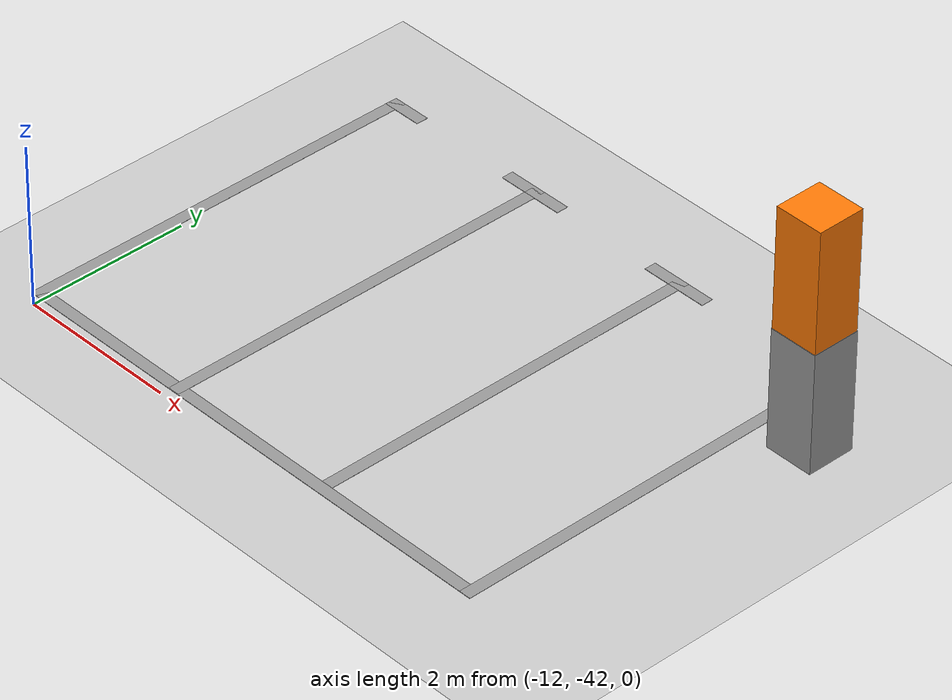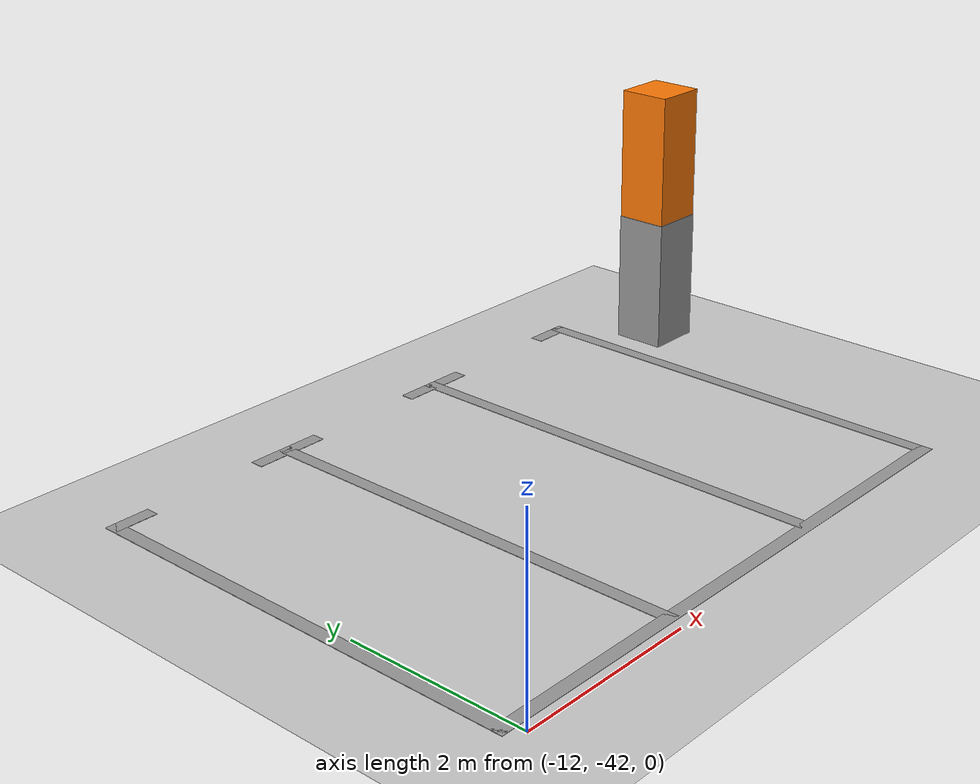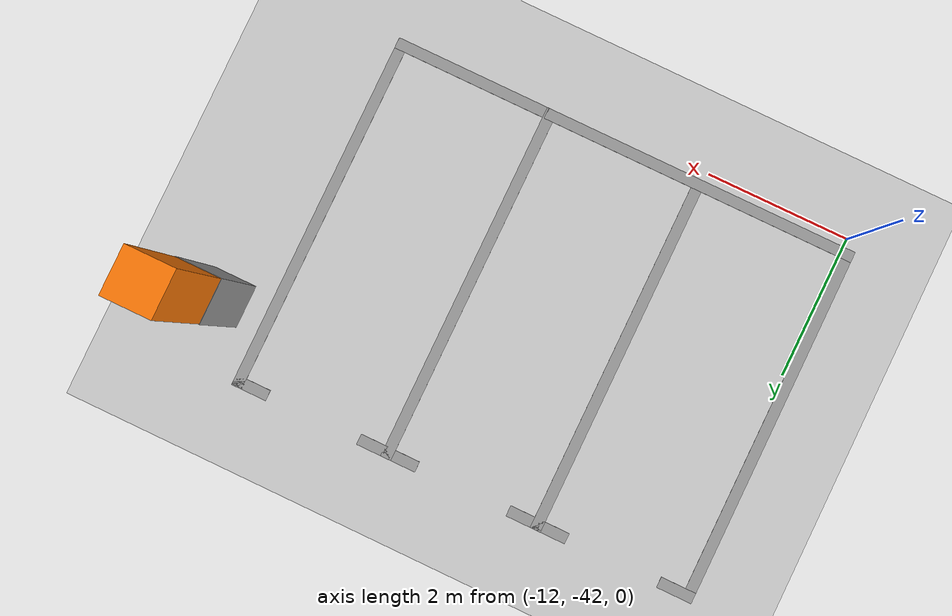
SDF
<sdf version="1.7">
 <world name="default">
  <model name="ground_plane">
   <static>1</static>
   <link name="link">
    <collision name="collision">
     <geometry><plane><normal>0 0 1</normal><size>100 100</size></plane></geometry>
     <surface><friction><ode><mu>100</mu><mu2>50</mu2></ode></friction></surface>
    </collision>
    <visual name="visual">
     <cast_shadows>0</cast_shadows>
     <geometry><plane><normal>0 0 1</normal><size>100 100</size></plane></geometry>
     <material>
      <script><uri>file://media/materials/scripts/gazebo.material</uri><name>Gazebo/Grey</name></script>
     </material>
    </visual>
   </link>
  </model>
  <model name="carport1_4_clone_3_clone_clone_3">
   <pose>-8.40181 -41.0747 0 0 -0 3.14141</pose>
   <link name="Wall_105">
    <collision name="Wall_105_Collision">
     <geometry><box><size>0.61 0.6 1.5</size></box></geometry>
     <pose>0 0 0.75 0 -0 0</pose>
    </collision>
    <visual name="Wall_105_Visual">
     <pose>0 0 0.75 0 -0 0</pose>
     <geometry><box><size>0.61 0.6 1.5</size></box></geometry>
     <material>
      <script><uri>file://media/materials/scripts/gazebo.material</uri><name>Gazebo/Grey</name></script>
      <ambient>1 1 1 1</ambient>
     </material>
     <meta><layer>0</layer></meta>
    </visual>
    <pose>-3.47407 -3.2865 0 0 -0 0</pose>
   </link>
   <link name="Wall_116">
    <collision name="Wall_116_Collision">
     <geometry><box><size>5.1 0.15 0.005</size></box></geometry>
     <pose>0 0 0.0025 0 -0 0</pose>
    </collision>
    <visual name="Wall_116_Visual">
     <pose>0 0 0.0025 0 -0 0</pose>
     <geometry><box><size>5.1 0.15 0.005</size></box></geometry>
     <material>
      <script><uri>file://media/materials/scripts/gazebo.material</uri><name>Gazebo/Grey</name></script>
      <ambient>1 1 1 1</ambient>
     </material>
     <meta><layer>0</layer></meta>
    </visual>
    <pose>-2.82307 -1.7385 0 0 -0 1.5708</pose>
   </link>
   <link name="Wall_124">
    <collision name="Wall_124_Collision">
     <geometry><box><size>5.1 0.15 0.005</size></box></geometry>
     <pose>0 0 0.0025 0 -0 0</pose>
    </collision>
    <visual name="Wall_124_Visual">
     <pose>0 0 0.0025 0 -0 0</pose>
     <geometry><box><size>5.1 0.15 0.005</size></box></geometry>
     <material>
      <script><uri>file://media/materials/scripts/gazebo.material</uri><name>Gazebo/Grey</name></script>
      <ambient>1 1 1 1</ambient>
     </material>
     <meta><layer>0</layer></meta>
    </visual>
    <pose>3.70393 -1.7305 0 0 -0 1.5708</pose>
   </link>
   <link name="Wall_146">
    <collision name="Wall_146_Collision">
     <geometry><box><size>6.67711 0.15 0.005</size></box></geometry>
     <pose>0 0 0.0025 0 -0 0</pose>
    </collision>
    <visual name="Wall_146_Visual">
     <pose>0 0 0.0025 0 -0 0</pose>
     <geometry><box><size>6.67711 0.15 0.005</size></box></geometry>
     <material>
      <script><uri>file://media/materials/scripts/gazebo.material</uri><name>Gazebo/Grey</name></script>
      <ambient>1 1 1 1</ambient>
     </material>
     <meta><layer>0</layer></meta>
    </visual>
    <pose>0.440428 0.7405 0 0 -0 0.001226</pose>
   </link>
   <link name="Wall_168">
    <collision name="Wall_168_Collision">
     <geometry><box><size>5.1 0.15 0.005</size></box></geometry>
     <pose>0 0 0.0025 0 -0 0</pose>
    </collision>
    <visual name="Wall_168_Visual">
     <pose>0 0 0.0025 0 -0 0</pose>
     <geometry><box><size>5.1 0.15 0.005</size></box></geometry>
     <material>
      <script><uri>file://media/materials/scripts/gazebo.material</uri><name>Gazebo/Grey</name></script>
      <ambient>1 1 1 1</ambient>
     </material>
     <meta><layer>0</layer></meta>
    </visual>
    <pose>-0.64827 -1.73839 0 0 -0 1.57088</pose>
   </link>
   <link name="Wall_173">
    <collision name="Wall_173_Collision">
     <geometry><box><size>5.1 0.15 0.005</size></box></geometry>
     <pose>0 0 0.0025 0 -0 0</pose>
    </collision>
    <visual name="Wall_173_Visual">
     <pose>0 0 0.0025 0 -0 0</pose>
     <geometry><box><size>5.1 0.15 0.005</size></box></geometry>
     <material>
      <script><uri>file://media/materials/scripts/gazebo.material</uri><name>Gazebo/Grey</name></script>
      <ambient>1 1 1 1</ambient>
     </material>
     <meta><layer>0</layer></meta>
    </visual>
    <pose>1.52673 -1.73839 0 0 -0 1.57088</pose>
   </link>
   <link name="Wall_177">
    <collision name="Wall_177_Collision">
     <geometry><box><size>0.6 0.59 3</size></box></geometry>
     <pose>0 0 1.5 0 -0 0</pose>
    </collision>
    <visual name="Wall_177_Visual">
     <pose>0 0 1.5 0 -0 0</pose>
     <geometry><box><size>0.6 0.59 3</size></box></geometry>
     <material>
      <script><uri>file://media/materials/scripts/gazebo.material</uri><name>Gazebo/Grey</name></script>
      <ambient>0.996078 0.47451 0.0196078 1</ambient>
     </material>
     <meta><layer>0</layer></meta>
    </visual>
    <pose>-3.47407 -3.2865 0 0 -0 0</pose>
   </link>
   <link name="Wall_179">
    <collision name="Wall_179_Collision">
     <geometry><box><size>0.5 0.15 0.005</size></box></geometry>
     <pose>0 0 0.0025 0 -0 0</pose>
    </collision>
    <visual name="Wall_179_Visual">
     <pose>0 0 0.0025 0 -0 0</pose>
     <geometry><box><size>0.5 0.15 0.005</size></box></geometry>
     <material>
      <script><uri>file://media/materials/scripts/gazebo.material</uri><name>Gazebo/Grey</name></script>
      <ambient>1 1 1 1</ambient>
     </material>
     <meta><layer>0</layer></meta>
    </visual>
    <pose>-2.64807 -4.2135 0 0 -0 0</pose>
   </link>
   <link name="Wall_181">
    <collision name="Wall_181_Collision">
     <geometry><box><size>0.5 0.15 0.005</size></box></geometry>
     <pose>0 0 0.0025 0 -0 0</pose>
    </collision>
    <visual name="Wall_181_Visual">
     <pose>0 0 0.0025 0 -0 0</pose>
     <geometry><box><size>0.5 0.15 0.005</size></box></geometry>
     <material>
      <script><uri>file://media/materials/scripts/gazebo.material</uri><name>Gazebo/Grey</name></script>
      <ambient>1 1 1 1</ambient>
     </material>
     <meta><layer>0</layer></meta>
    </visual>
    <pose>-0.823072 -4.2135 0 0 -0 3.14159</pose>
   </link>
   <link name="Wall_183">
    <collision name="Wall_183_Collision">
     <geometry><box><size>0.5 0.15 0.005</size></box></geometry>
     <pose>0 0 0.0025 0 -0 0</pose>
    </collision>
    <visual name="Wall_183_Visual">
     <pose>0 0 0.0025 0 -0 0</pose>
     <geometry><box><size>0.5 0.15 0.005</size></box></geometry>
     <material>
      <script><uri>file://media/materials/scripts/gazebo.material</uri><name>Gazebo/Grey</name></script>
      <ambient>1 1 1 1</ambient>
     </material>
     <meta><layer>0</layer></meta>
    </visual>
    <pose>-0.473072 -4.2135 0 0 -0 0</pose>
   </link>
   <link name="Wall_185">
    <collision name="Wall_185_Collision">
     <geometry><box><size>0.5 0.15 0.005</size></box></geometry>
     <pose>0 0 0.0025 0 -0 0</pose>
    </collision>
    <visual name="Wall_185_Visual">
     <pose>0 0 0.0025 0 -0 0</pose>
     <geometry><box><size>0.5 0.15 0.005</size></box></geometry>
     <material>
      <script><uri>file://media/materials/scripts/gazebo.material</uri><name>Gazebo/Grey</name></script>
      <ambient>1 1 1 1</ambient>
     </material>
     <meta><layer>0</layer></meta>
    </visual>
    <pose>1.35193 -4.2135 0 0 -0 3.14159</pose>
   </link>
   <link name="Wall_187">
    <collision name="Wall_187_Collision">
     <geometry><box><size>0.5 0.15 0.005</size></box></geometry>
     <pose>0 0 0.0025 0 -0 0</pose>
    </collision>
    <visual name="Wall_187_Visual">
     <pose>0 0 0.0025 0 -0 0</pose>
     <geometry><box><size>0.5 0.15 0.005</size></box></geometry>
     <material>
      <script><uri>file://media/materials/scripts/gazebo.material</uri><name>Gazebo/Grey</name></script>
      <ambient>1 1 1 1</ambient>
     </material>
     <meta><layer>0</layer></meta>
    </visual>
    <pose>1.70193 -4.2135 0 0 -0 0</pose>
   </link>
   <link name="Wall_189">
    <collision name="Wall_189_Collision">
     <geometry><box><size>0.5 0.15 0.005</size></box></geometry>
     <pose>0 0 0.0025 0 -0 0</pose>
    </collision>
    <visual name="Wall_189_Visual">
     <pose>0 0 0.0025 0 -0 0</pose>
     <geometry><box><size>0.5 0.15 0.005</size></box></geometry>
     <material>
      <script><uri>file://media/materials/scripts/gazebo.material</uri><name>Gazebo/Grey</name></script>
      <ambient>1 1 1 1</ambient>
     </material>
     <meta><layer>0</layer></meta>
    </visual>
    <pose>3.52893 -4.2055 0 0 -0 3.14159</pose>
   </link>
   <static>1</static>
  </model>
 </world>
</sdf>
